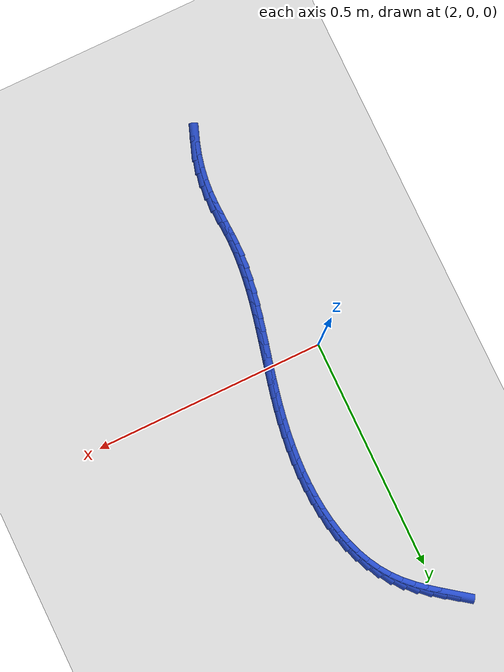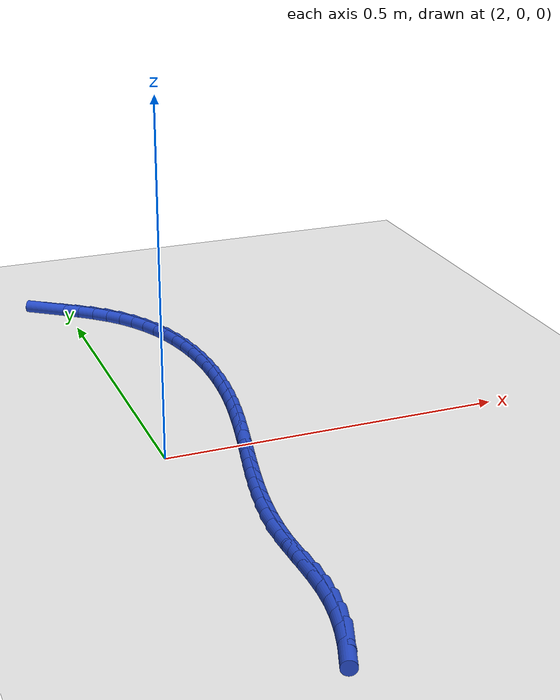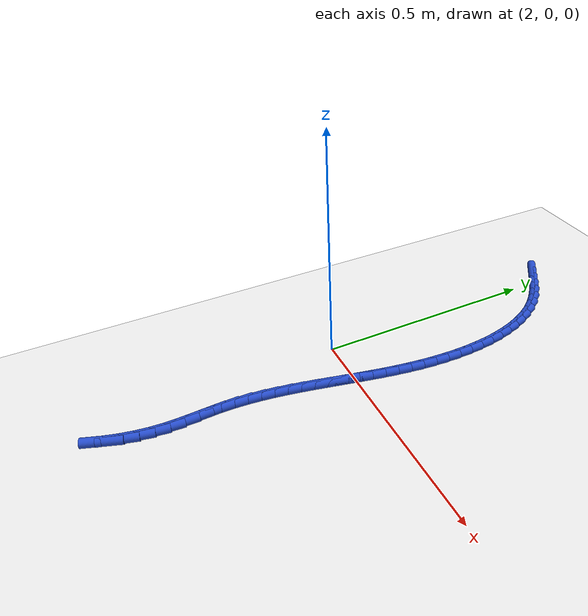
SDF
<sdf version="1.6">
 <world name="default">
  <model name="ground_plane">
   <static>1</static>
   <link name="link">
    <collision name="collision">
     <geometry><plane><normal>0 0 1</normal><size>100 100</size></plane></geometry>
     <surface><friction><ode><mu>100</mu><mu2>50</mu2></ode></friction></surface>
    </collision>
    <visual name="visual">
     <cast_shadows>0</cast_shadows>
     <geometry><plane><normal>0 0 1</normal><size>100 100</size></plane></geometry>
     <material>
      <script><uri>file://media/materials/scripts/gazebo.material</uri><name>Gazebo/WhiteGlow</name></script>
     </material>
    </visual>
   </link>
  </model>
  <model name="line">
   <link name="link_105">
    <pose>1.971467666829177 0.5812290288896823 0.01 0 1.57 -0.6360106076244355</pose>
    <collision name="collision">
     <geometry><cylinder><radius>0.01</radius><length>0.08</length></cylinder></geometry>
    </collision>
    <visual name="visual">
     <material>
      <script><name>Gazebo/Blue</name><uri>file://media/materials/scripts/gazebo.material</uri></script>
     </material>
     <geometry><cylinder><radius>0.01</radius><length>0.08</length></cylinder></geometry>
    </visual>
   </link>
   <link name="link_106">
    <pose>1.9942933422579845 0.5643754344368411 0.01 0 1.57 -0.6576398010610115</pose>
    <collision name="collision">
     <geometry><cylinder><radius>0.01</radius><length>0.08</length></cylinder></geometry>
    </collision>
    <visual name="visual">
     <material>
      <script><name>Gazebo/Blue</name><uri>file://media/materials/scripts/gazebo.material</uri></script>
     </material>
     <geometry><cylinder><radius>0.01</radius><length>0.08</length></cylinder></geometry>
    </visual>
   </link>
   <link name="link_107">
    <pose>2.016573897751508 0.5471674934093743 0.01 0 1.57 -0.7018640983453049</pose>
    <collision name="collision">
     <geometry><cylinder><radius>0.01</radius><length>0.08</length></cylinder></geometry>
    </collision>
    <visual name="visual">
     <material>
      <script><name>Gazebo/Blue</name><uri>file://media/materials/scripts/gazebo.material</uri></script>
     </material>
     <geometry><cylinder><radius>0.01</radius><length>0.08</length></cylinder></geometry>
    </visual>
   </link>
   <link name="link_108">
    <pose>2.0378063308471455 0.5292158963491549 0.01 0 1.57 -0.7700057952340165</pose>
    <collision name="collision">
     <geometry><cylinder><radius>0.01</radius><length>0.08</length></cylinder></geometry>
    </collision>
    <visual name="visual">
     <material>
      <script><name>Gazebo/Blue</name><uri>file://media/materials/scripts/gazebo.material</uri></script>
     </material>
     <geometry><cylinder><radius>0.01</radius><length>0.08</length></cylinder></geometry>
    </visual>
   </link>
   <link name="link_109">
    <pose>2.0574876390822965 0.5101313337980562 0.01 0 1.57 -0.8623699271416608</pose>
    <collision name="collision">
     <geometry><cylinder><radius>0.01</radius><length>0.08</length></cylinder></geometry>
    </collision>
    <visual name="visual">
     <material>
      <script><name>Gazebo/Blue</name><uri>file://media/materials/scripts/gazebo.material</uri></script>
     </material>
     <geometry><cylinder><radius>0.01</radius><length>0.08</length></cylinder></geometry>
    </visual>
   </link>
   <link name="link_110">
    <pose>2.075130928321309 0.4895391681696057 0.01 0 1.57 -0.9634981187758686</pose>
    <collision name="collision">
     <geometry><cylinder><radius>0.01</radius><length>0.08</length></cylinder></geometry>
    </collision>
    <visual name="visual">
     <material>
      <script><name>Gazebo/Blue</name><uri>file://media/materials/scripts/gazebo.material</uri></script>
     </material>
     <geometry><cylinder><radius>0.01</radius><length>0.08</length></cylinder></geometry>
    </visual>
   </link>
   <link name="link_111">
    <pose>2.090555009926637 0.46734320617796865 0.01 0 1.57 -1.0585389912316856</pose>
    <collision name="collision">
     <geometry><cylinder><radius>0.01</radius><length>0.08</length></cylinder></geometry>
    </collision>
    <visual name="visual">
     <material>
      <script><name>Gazebo/Blue</name><uri>file://media/materials/scripts/gazebo.material</uri></script>
     </material>
     <geometry><cylinder><radius>0.01</radius><length>0.08</length></cylinder></geometry>
    </visual>
   </link>
   <link name="link_112">
    <pose>2.103852228391037 0.44369639543153866 0.01 0 1.57 -1.1462367786478787</pose>
    <collision name="collision">
     <geometry><cylinder><radius>0.01</radius><length>0.08</length></cylinder></geometry>
    </collision>
    <visual name="visual">
     <material>
      <script><name>Gazebo/Blue</name><uri>file://media/materials/scripts/gazebo.material</uri></script>
     </material>
     <geometry><cylinder><radius>0.01</radius><length>0.08</length></cylinder></geometry>
    </visual>
   </link>
   <link name="link_113">
    <pose>2.1151245771086047 0.41876047200212396 0.01 0 1.57 -1.2263728101948455</pose>
    <collision name="collision">
     <geometry><cylinder><radius>0.01</radius><length>0.08</length></cylinder></geometry>
    </collision>
    <visual name="visual">
     <material>
      <script><name>Gazebo/Blue</name><uri>file://media/materials/scripts/gazebo.material</uri></script>
     </material>
     <geometry><cylinder><radius>0.01</radius><length>0.08</length></cylinder></geometry>
    </visual>
   </link>
   <link name="link_114">
    <pose>2.124474049473438 0.3926971719615328 0.01 0 1.57 -1.2991437690122838</pose>
    <collision name="collision">
     <geometry><cylinder><radius>0.01</radius><length>0.08</length></cylinder></geometry>
    </collision>
    <visual name="visual">
     <material>
      <script><name>Gazebo/Blue</name><uri>file://media/materials/scripts/gazebo.material</uri></script>
     </material>
     <geometry><cylinder><radius>0.01</radius><length>0.08</length></cylinder></geometry>
    </visual>
   </link>
   <link name="link_115">
    <pose>2.132002638879633 0.36566823138157317 0.01 0 1.57 -1.3650156337641595</pose>
    <collision name="collision">
     <geometry><cylinder><radius>0.01</radius><length>0.08</length></cylinder></geometry>
    </collision>
    <visual name="visual">
     <material>
      <script><name>Gazebo/Blue</name><uri>file://media/materials/scripts/gazebo.material</uri></script>
     </material>
     <geometry><cylinder><radius>0.01</radius><length>0.08</length></cylinder></geometry>
    </visual>
   </link>
   <link name="link_116">
    <pose>2.1378123387212855 0.3378353863340531 0.01 0 1.57 -1.4246018276877273</pose>
    <collision name="collision">
     <geometry><cylinder><radius>0.01</radius><length>0.08</length></cylinder></geometry>
    </collision>
    <visual name="visual">
     <material>
      <script><name>Gazebo/Blue</name><uri>file://media/materials/scripts/gazebo.material</uri></script>
     </material>
     <geometry><cylinder><radius>0.01</radius><length>0.08</length></cylinder></geometry>
    </visual>
   </link>
   <link name="link_117">
    <pose>2.142005142392493 0.30936037289078094 0.01 0 1.57 -1.478575160921656</pose>
    <collision name="collision">
     <geometry><cylinder><radius>0.01</radius><length>0.08</length></cylinder></geometry>
    </collision>
    <visual name="visual">
     <material>
      <script><name>Gazebo/Blue</name><uri>file://media/materials/scripts/gazebo.material</uri></script>
     </material>
     <geometry><cylinder><radius>0.01</radius><length>0.08</length></cylinder></geometry>
    </visual>
   </link>
   <link name="link_118">
    <pose>2.1446830432873516 0.2804049271235647 0.01 0 1.57 -1.5276112854387163</pose>
    <collision name="collision">
     <geometry><cylinder><radius>0.01</radius><length>0.08</length></cylinder></geometry>
    </collision>
    <visual name="visual">
     <material>
      <script><name>Gazebo/Blue</name><uri>file://media/materials/scripts/gazebo.material</uri></script>
     </material>
     <geometry><cylinder><radius>0.01</radius><length>0.08</length></cylinder></geometry>
    </visual>
   </link>
   <link name="link_119">
    <pose>2.145948034799957 0.2511307851042125 0.01 0 1.57 1.5692359218204361</pose>
    <collision name="collision">
     <geometry><cylinder><radius>0.01</radius><length>0.08</length></cylinder></geometry>
    </collision>
    <visual name="visual">
     <material>
      <script><name>Gazebo/Blue</name><uri>file://media/materials/scripts/gazebo.material</uri></script>
     </material>
     <geometry><cylinder><radius>0.01</radius><length>0.08</length></cylinder></geometry>
    </visual>
   </link>
   <link name="link_120">
    <pose>2.1459021103244074 0.22169968290453296 0.01 0 1.57 1.5281784598716286</pose>
    <collision name="collision">
     <geometry><cylinder><radius>0.01</radius><length>0.08</length></cylinder></geometry>
    </collision>
    <visual name="visual">
     <material>
      <script><name>Gazebo/Blue</name><uri>file://media/materials/scripts/gazebo.material</uri></script>
     </material>
     <geometry><cylinder><radius>0.01</radius><length>0.08</length></cylinder></geometry>
    </visual>
   </link>
   <link name="link_121">
    <pose>2.144647263254799 0.19227335659633318 0.01 0 1.57 1.4902535395604115</pose>
    <collision name="collision">
     <geometry><cylinder><radius>0.01</radius><length>0.08</length></cylinder></geometry>
    </collision>
    <visual name="visual">
     <material>
      <script><name>Gazebo/Blue</name><uri>file://media/materials/scripts/gazebo.material</uri></script>
     </material>
     <geometry><cylinder><radius>0.01</radius><length>0.08</length></cylinder></geometry>
    </visual>
   </link>
   <link name="link_122">
    <pose>2.1422854869852275 0.163013542251422 0.01 0 1.57 1.4549598750389396</pose>
    <collision name="collision">
     <geometry><cylinder><radius>0.01</radius><length>0.08</length></cylinder></geometry>
    </collision>
    <visual name="visual">
     <material>
      <script><name>Gazebo/Blue</name><uri>file://media/materials/scripts/gazebo.material</uri></script>
     </material>
     <geometry><cylinder><radius>0.01</radius><length>0.08</length></cylinder></geometry>
    </visual>
   </link>
   <link name="link_123">
    <pose>2.138918986624992 0.1340811164465678 0.01 0 1.57 1.422787657680819</pose>
    <collision name="collision">
     <geometry><cylinder><radius>0.01</radius><length>0.08</length></cylinder></geometry>
    </collision>
    <visual name="visual">
     <material>
      <script><name>Gazebo/Blue</name><uri>file://media/materials/scripts/gazebo.material</uri></script>
     </material>
     <geometry><cylinder><radius>0.01</radius><length>0.08</length></cylinder></geometry>
    </visual>
   </link>
   <link name="link_124">
    <pose>2.134667423963356 0.10556608730069117 0.01 0 1.57 1.3953458776986796</pose>
    <collision name="collision">
     <geometry><cylinder><radius>0.01</radius><length>0.08</length></cylinder></geometry>
    </collision>
    <visual name="visual">
     <material>
      <script><name>Gazebo/Blue</name><uri>file://media/materials/scripts/gazebo.material</uri></script>
     </material>
     <geometry><cylinder><radius>0.01</radius><length>0.08</length></cylinder></geometry>
    </visual>
   </link>
   <link name="link_125">
    <pose>2.1296806772568173 0.07743579387774244 0.01 0 1.57 1.373021577379677</pose>
    <collision name="collision">
     <geometry><cylinder><radius>0.01</radius><length>0.08</length></cylinder></geometry>
    </collision>
    <visual name="visual">
     <material>
      <script><name>Gazebo/Blue</name><uri>file://media/materials/scripts/gazebo.material</uri></script>
     </material>
     <geometry><cylinder><radius>0.01</radius><length>0.08</length></cylinder></geometry>
    </visual>
   </link>
   <link name="link_126">
    <pose>2.124111631813666 0.04964536758686199 0.01 0 1.57 1.3559997967998347</pose>
    <collision name="collision">
     <geometry><cylinder><radius>0.01</radius><length>0.08</length></cylinder></geometry>
    </collision>
    <visual name="visual">
     <material>
      <script><name>Gazebo/Blue</name><uri>file://media/materials/scripts/gazebo.material</uri></script>
     </material>
     <geometry><cylinder><radius>0.01</radius><length>0.08</length></cylinder></geometry>
    </visual>
   </link>
   <link name="link_127">
    <pose>2.1181131729421896 0.022149939837190248 0.01 0 1.57 1.3444292656731116</pose>
    <collision name="collision">
     <geometry><cylinder><radius>0.01</radius><length>0.08</length></cylinder></geometry>
    </collision>
    <visual name="visual">
     <material>
      <script><name>Gazebo/Blue</name><uri>file://media/materials/scripts/gazebo.material</uri></script>
     </material>
     <geometry><cylinder><radius>0.01</radius><length>0.08</length></cylinder></geometry>
    </visual>
   </link>
   <link name="link_128">
    <pose>2.111838185950678 -0.005095357962132296 0.01 0 1.57 1.3384351214751287</pose>
    <collision name="collision">
     <geometry><cylinder><radius>0.01</radius><length>0.08</length></cylinder></geometry>
    </collision>
    <visual name="visual">
     <material>
      <script><name>Gazebo/Blue</name><uri>file://media/materials/scripts/gazebo.material</uri></script>
     </material>
     <geometry><cylinder><radius>0.01</radius><length>0.08</length></cylinder></geometry>
    </visual>
   </link>
   <link name="link_129">
    <pose>2.105439556147421 -0.03213539440196524 0.01 0 1.57 1.3381282151093716</pose>
    <collision name="collision">
     <geometry><cylinder><radius>0.01</radius><length>0.08</length></cylinder></geometry>
    </collision>
    <visual name="visual">
     <material>
      <script><name>Gazebo/Blue</name><uri>file://media/materials/scripts/gazebo.material</uri></script>
     </material>
     <geometry><cylinder><radius>0.01</radius><length>0.08</length></cylinder></geometry>
    </visual>
   </link>
   <link name="link_130">
    <pose>2.0990701688407074 -0.05901503807316807 0.01 0 1.57 1.3436099839363422</pose>
    <collision name="collision">
     <geometry><cylinder><radius>0.01</radius><length>0.08</length></cylinder></geometry>
    </collision>
    <visual name="visual">
     <material>
      <script><name>Gazebo/Blue</name><uri>file://media/materials/scripts/gazebo.material</uri></script>
     </material>
     <geometry><cylinder><radius>0.01</radius><length>0.08</length></cylinder></geometry>
    </visual>
   </link>
   <link name="link_131">
    <pose>2.092882909338826 -0.08577915756660039 0.01 0 1.57 1.3549720751234684</pose>
    <collision name="collision">
     <geometry><cylinder><radius>0.01</radius><length>0.08</length></cylinder></geometry>
    </collision>
    <visual name="visual">
     <material>
      <script><name>Gazebo/Blue</name><uri>file://media/materials/scripts/gazebo.material</uri></script>
     </material>
     <geometry><cylinder><radius>0.01</radius><length>0.08</length></cylinder></geometry>
    </visual>
   </link>
   <link name="link_132">
    <pose>2.087030662950066 -0.11247262147312172 0.01 0 1.57 1.3722900255766097</pose>
    <collision name="collision">
     <geometry><cylinder><radius>0.01</radius><length>0.08</length></cylinder></geometry>
    </collision>
    <visual name="visual">
     <material>
      <script><name>Gazebo/Blue</name><uri>file://media/materials/scripts/gazebo.material</uri></script>
     </material>
     <geometry><cylinder><radius>0.01</radius><length>0.08</length></cylinder></geometry>
    </visual>
   </link>
   <link name="link_133">
    <pose>2.081666314982716 -0.13914029838359165 0.01 0 1.57 1.3956104615053078</pose>
    <collision name="collision">
     <geometry><cylinder><radius>0.01</radius><length>0.08</length></cylinder></geometry>
    </collision>
    <visual name="visual">
     <material>
      <script><name>Gazebo/Blue</name><uri>file://media/materials/scripts/gazebo.material</uri></script>
     </material>
     <geometry><cylinder><radius>0.01</radius><length>0.08</length></cylinder></geometry>
    </visual>
   </link>
   <link name="link_134">
    <pose>2.0769427507450664 -0.16582705688886973 0.01 0 1.57 1.4249316267299739</pose>
    <collision name="collision">
     <geometry><cylinder><radius>0.01</radius><length>0.08</length></cylinder></geometry>
    </collision>
    <visual name="visual">
     <material>
      <script><name>Gazebo/Blue</name><uri>file://media/materials/scripts/gazebo.material</uri></script>
     </material>
     <geometry><cylinder><radius>0.01</radius><length>0.08</length></cylinder></geometry>
    </visual>
   </link>
   <link name="link_135">
    <pose>2.0730128555454055 -0.19257776557981543 0.01 0 1.57 1.4601777613184292</pose>
    <collision name="collision">
     <geometry><cylinder><radius>0.01</radius><length>0.08</length></cylinder></geometry>
    </collision>
    <visual name="visual">
     <material>
      <script><name>Gazebo/Blue</name><uri>file://media/materials/scripts/gazebo.material</uri></script>
     </material>
     <geometry><cylinder><radius>0.01</radius><length>0.08</length></cylinder></geometry>
    </visual>
   </link>
   <link name="link_136">
    <pose>2.0700295146920227 -0.21943729304728843 0.01 0 1.57 1.501169076927372</pose>
    <collision name="collision">
     <geometry><cylinder><radius>0.01</radius><length>0.08</length></cylinder></geometry>
    </collision>
    <visual name="visual">
     <material>
      <script><name>Gazebo/Blue</name><uri>file://media/materials/scripts/gazebo.material</uri></script>
     </material>
     <geometry><cylinder><radius>0.01</radius><length>0.08</length></cylinder></geometry>
    </visual>
   </link>
   <link name="link_137">
    <pose>2.068145613493207 -0.2464505078821482 0.01 0 1.57 1.5475908224667234</pose>
    <collision name="collision">
     <geometry><cylinder><radius>0.01</radius><length>0.08</length></cylinder></geometry>
    </collision>
    <visual name="visual">
     <material>
      <script><name>Gazebo/Blue</name><uri>file://media/materials/scripts/gazebo.material</uri></script>
     </material>
     <geometry><cylinder><radius>0.01</radius><length>0.08</length></cylinder></geometry>
    </visual>
   </link>
   <link name="link_138">
    <pose>2.0675140372572476 -0.27366227867525433 0.01 0 1.57 -1.548735576942564</pose>
    <collision name="collision">
     <geometry><cylinder><radius>0.01</radius><length>0.08</length></cylinder></geometry>
    </collision>
    <visual name="visual">
     <material>
      <script><name>Gazebo/Blue</name><uri>file://media/materials/scripts/gazebo.material</uri></script>
     </material>
     <geometry><cylinder><radius>0.01</radius><length>0.08</length></cylinder></geometry>
    </visual>
   </link>
   <link name="link_139">
    <pose>2.068119383096862 -0.30109777556048317 0.01 0 1.57 -1.5291202352671924</pose>
    <collision name="collision">
     <geometry><cylinder><radius>0.01</radius><length>0.08</length></cylinder></geometry>
    </collision>
    <visual name="visual">
     <material>
      <script><name>Gazebo/Blue</name><uri>file://media/materials/scripts/gazebo.material</uri></script>
     </material>
     <geometry><cylinder><radius>0.01</radius><length>0.08</length></cylinder></geometry>
    </visual>
   </link>
   <link name="link_140">
    <pose>2.069270530619796 -0.32870307463805554 0.01 0 1.57 -1.5406171995265743</pose>
    <collision name="collision">
     <geometry><cylinder><radius>0.01</radius><length>0.08</length></cylinder></geometry>
    </collision>
    <visual name="visual">
     <material>
      <script><name>Gazebo/Blue</name><uri>file://media/materials/scripts/gazebo.material</uri></script>
     </material>
     <geometry><cylinder><radius>0.01</radius><length>0.08</length></cylinder></geometry>
    </visual>
   </link>
   <link name="link_141">
    <pose>2.0701067864358706 -0.3564044031626222 0.01 0 1.57 1.5585572049435437</pose>
    <collision name="collision">
     <geometry><cylinder><radius>0.01</radius><length>0.08</length></cylinder></geometry>
    </collision>
    <visual name="visual">
     <material>
      <script><name>Gazebo/Blue</name><uri>file://media/materials/scripts/gazebo.material</uri></script>
     </material>
     <geometry><cylinder><radius>0.01</radius><length>0.08</length></cylinder></geometry>
    </visual>
   </link>
   <link name="link_142">
    <pose>2.0697674571545606 -0.3841279883887933 0.01 0 1.57 1.4897760196228107</pose>
    <collision name="collision">
     <geometry><cylinder><radius>0.01</radius><length>0.08</length></cylinder></geometry>
    </collision>
    <visual name="visual">
     <material>
      <script><name>Gazebo/Blue</name><uri>file://media/materials/scripts/gazebo.material</uri></script>
     </material>
     <geometry><cylinder><radius>0.01</radius><length>0.08</length></cylinder></geometry>
    </visual>
   </link>
   <link name="link_143">
    <pose>2.0675207688086776 -0.4117972271271785 0.01 0 1.57 1.4175364703737428</pose>
    <collision name="collision">
     <geometry><cylinder><radius>0.01</radius><length>0.08</length></cylinder></geometry>
    </collision>
    <visual name="visual">
     <material>
      <script><name>Gazebo/Blue</name><uri>file://media/materials/scripts/gazebo.material</uri></script>
     </material>
     <geometry><cylinder><radius>0.01</radius><length>0.08</length></cylinder></geometry>
    </visual>
   </link>
   <link name="link_144">
    <pose>2.06326904700713 -0.43932159444335567 0.01 0 1.57 1.348758391167809</pose>
    <collision name="collision">
     <geometry><cylinder><radius>0.01</radius><length>0.08</length></cylinder></geometry>
    </collision>
    <visual name="visual">
     <material>
      <script><name>Gazebo/Blue</name><uri>file://media/materials/scripts/gazebo.material</uri></script>
     </material>
     <geometry><cylinder><radius>0.01</radius><length>0.08</length></cylinder></geometry>
    </visual>
   </link>
   <link name="link_145">
    <pose>2.057109246965025 -0.46660629228263073 0.01 0 1.57 1.2832315264192486</pose>
    <collision name="collision">
     <geometry><cylinder><radius>0.01</radius><length>0.08</length></cylinder></geometry>
    </collision>
    <visual name="visual">
     <material>
      <script><name>Gazebo/Blue</name><uri>file://media/materials/scripts/gazebo.material</uri></script>
     </material>
     <geometry><cylinder><radius>0.01</radius><length>0.08</length></cylinder></geometry>
    </visual>
   </link>
   <link name="link_146">
    <pose>2.049138375698691 -0.4935565214530081 0.01 0 1.57 1.220662281880246</pose>
    <collision name="collision">
     <geometry><cylinder><radius>0.01</radius><length>0.08</length></cylinder></geometry>
    </collision>
    <visual name="visual">
     <material>
      <script><name>Gazebo/Blue</name><uri>file://media/materials/scripts/gazebo.material</uri></script>
     </material>
     <geometry><cylinder><radius>0.01</radius><length>0.08</length></cylinder></geometry>
    </visual>
   </link>
  </model>
 </world>
</sdf>
